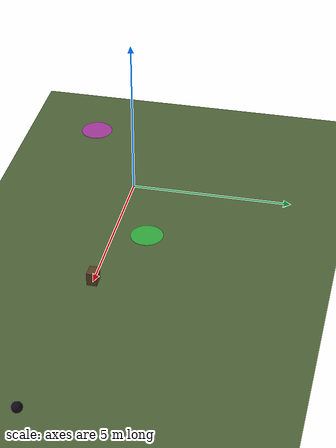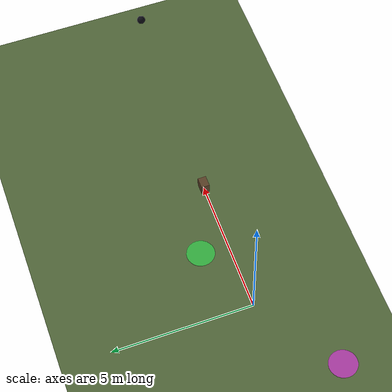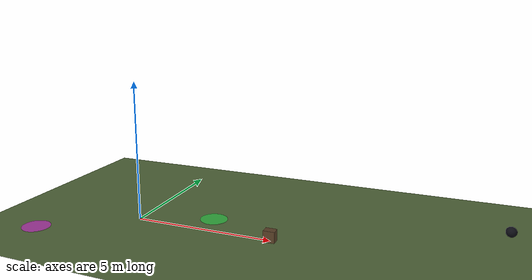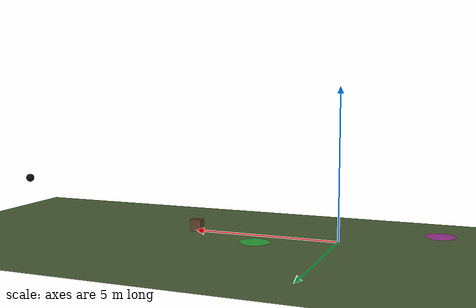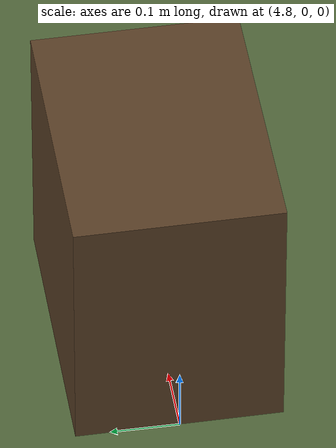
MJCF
<mujoco model="hunt_arena">
  <compiler autolimits="true"/>
  <option gravity="0 0 -9.81" timestep="0.0005" iterations="100"/>

  <default>
    <!-- Contact solver params from Scope on every geom unless overridden. -->
    <geom solref="2e-4 1e3" solimp="0.999 0.9999 0.001 0.5 2.0"/>
  </default>

  <asset>
    <texture name="sky" type="skybox" builtin="gradient"
             rgb1="0.35 0.55 0.8" rgb2="0.85 0.9 1.0" width="512" height="512"/>
    <texture name="ground_tex" type="2d" builtin="checker" width="512" height="512"
             rgb1="0.28 0.38 0.2" rgb2="0.35 0.42 0.25"/>
    <material name="ground_mat" texture="ground_tex" texrepeat="30 30" reflectance="0.05"/>
    <material name="moose_mat" rgba="0.35 0.25 0.15 1.0" reflectance="0.1"/>
    <material name="threat_ball" rgba="0.05 0.05 0.08 1.0" reflectance="0.15" specular="0.5" shininess="0.8"/>
    <material name="odor_food" rgba="0.2 0.85 0.3 0.7" reflectance="0.3" emission="0.5"/>
    <material name="odor_danger" rgba="0.85 0.2 0.85 0.7" reflectance="0.3" emission="0.5"/>
  </asset>

  <visual>
    <headlight ambient="0.35 0.35 0.4" diffuse="0.7 0.7 0.65" specular="0.3 0.3 0.3"/>
  </visual>

  <worldbody>
    <light name="sun" pos="0 0 200" dir="0.4 0.3 -1.0"
           diffuse="1.0 0.95 0.85" specular="0.5 0.5 0.4"
           castshadow="true" directional="true"/>
    <geom name="ground" type="plane" material="ground_mat"
          size="30 30 1" friction="1 0.005 0.0001" conaffinity="0"/>
    <camera name="hunt_cam" pos="-4 -6 4" xyaxes="1 0 0 0 1 0"/>

    <!-- Fly spawn marker (site, NOT a body — real fly composed at runtime). -->
    <site name="fly_spawn_0" pos="0 0 0.05" size="0.01" rgba="1 1 1 1" group="4"/>

    <!-- Moose-box 1:100 fantasy: 0.5 kg, 0.4 x 0.3 x 0.4 m = 0.048 m3. -->
    <body name="moose_box" pos="5 0 0.2">
      <freejoint name="moose_free"/>
      <inertial mass="0.5" diaginertia="0.0104 0.0133 0.0104" pos="0 0 0"/>
      <geom name="moose_geom" type="box" size="0.2 0.15 0.2" material="moose_mat"
            solref="2e-4 1e3" solimp="0.999 0.9999 0.001 0.5 2.0"/>
      <site name="moose_target" pos="0 0 0.25" size="0.02" rgba="1 0 0 1" group="4"/>
    </body>

    <!-- 2 odor pits (visual-only, vendor convention contype=0 conaffinity=0). -->
    <geom name="odor_pit_0" type="cylinder" size="0.5 0.01" pos="2.5 1.0 0.011"
          material="odor_food" contype="0" conaffinity="0"/>
    <geom name="odor_pit_1" type="cylinder" size="0.5 0.01" pos="-3.0 -2.0 0.011"
          material="odor_danger" contype="0" conaffinity="0"/>
    <site name="odor_label_0" pos="2.5 1.0 0.6" size="0.02" rgba="0.2 0.85 0.3 1" group="4"/>
    <site name="odor_label_1" pos="-3.0 -2.0 0.6" size="0.02" rgba="0.85 0.2 0.85 1" group="4"/>

    <!-- Looming ball: mocap body, 3 s approach trajectory via keyframes. -->
    <body name="looming_sphere" mocap="true" pos="12 0 1.5" gravcomp="1">
      <geom name="looming_ball" type="sphere" size="0.15" material="threat_ball"
            contype="0" conaffinity="0"/>
    </body>
  </worldbody>

  <keyframe>
    <!-- 3 s headless loom: start far on +x, end near origin (Task 12 renders 90 frames). -->
    <key name="loom_start" mpos="12 0 1.5" mquat="1 0 0 0"/>
    <key name="loom_end" mpos="0.5 0 0.15" mquat="1 0 0 0"/>
  </keyframe>
</mujoco>
